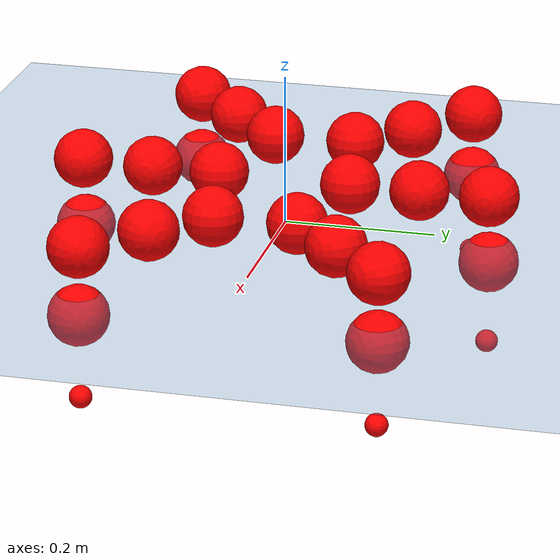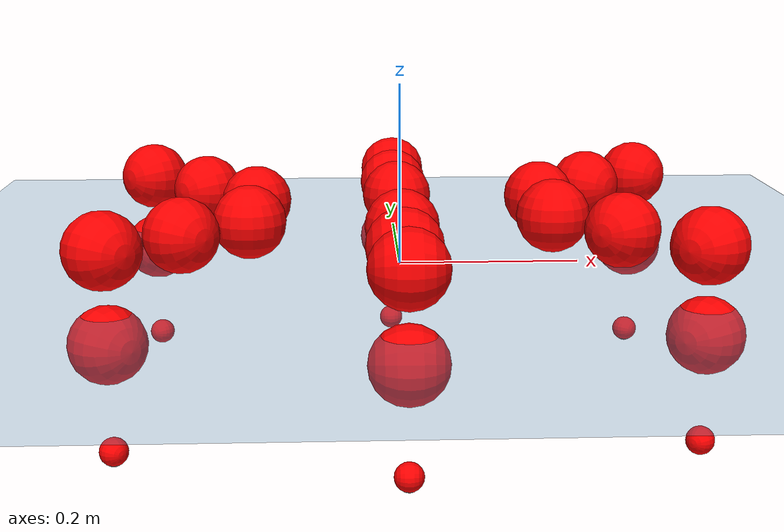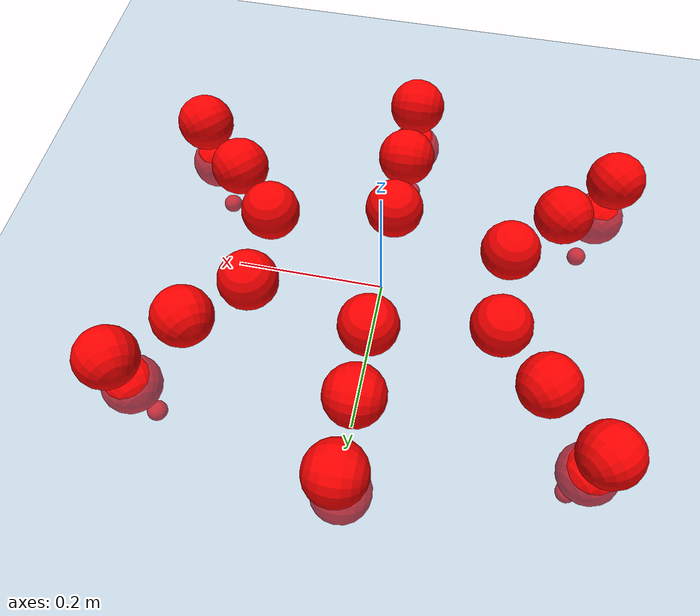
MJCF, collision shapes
<mujoco model="Golem">
  <compiler angle="radian" assetdir="assets" balanceinertia="true" inertiafromgeom="false"/>

  <option timestep="0.005" density="1.2" viscosity="2e-05"/>

  <size nkey="1"/>

  <visual>
    <quality shadowsize="8192"/>
    <map shadowclip="0.5"/>
  </visual>

  <default>
    <default class="/">
      <joint armature="0.01" damping="0.01" frictionloss="0.01"/>
      <geom contype="0" conaffinity="0" group="1" solref="-1000 -80"/>
      <site size="0.01 0.005 0.005" group="5"/>
      <general forcelimited="true" biastype="affine" gainprm="25" biasprm="0 -25 -0.5"/>
      <default class="visual">
        <geom type="mesh" group="2"/>
      </default>
      <default class="collision">
        <geom group="3"/>
      </default>
      <default class="foot">
        <geom size="0.01 0 0" condim="6" group="4" priority="1" solimp="0.015 1 0.01"/>
      </default>
      <default class="reward_collision_sphere">
        <geom group="5" rgba="1 0 0 1"/>
      </default>
    </default>
  </default>

  <asset>
    <texture type="skybox" colorspace="auto" name="//unnamed_texture_0" builtin="gradient" rgb1="0.95 0.95 0.95" rgb2="0.95 0.95 0.95" width="100" height="600"/>
    <texture type="2d" colorspace="auto" name="texplane" builtin="checker" rgb1="0.345 0.575 0.748" rgb2="0.345 0.575 0.748" markrgb="1 1 1" width="512" height="512"/>
    <material name="MatPlane" class="/" texture="texplane" texuniform="true" texrepeat="2 2" specular="0.9"/>
    <mesh name="body" class="/" file="body.stl" scale="0.001 0.001 0.001"/>
    <mesh name="coxa" class="/" file="coxa.stl" scale="0.001 0.001 0.001"/>
    <mesh name="femur" class="/" file="femur.stl" scale="0.001 0.001 0.001"/>
    <mesh name="tibia" class="/" file="tibia.stl" scale="0.001 0.001 0.001"/>
    <mesh name="tarsus" class="/" file="tarsus.stl" scale="0.001 0.001 0.001"/>
  </asset>

  <worldbody>
    <geom name="floor" class="/" size="100 100 0.125" type="plane" group="0" material="MatPlane"/>
    <light name="toplight_shadow" class="/" pos="0 0 5" dir="0.0990148 0.0990148 -0.990148" type="directional" ambient="0.04 0.04 0.04" diffuse="0.55 0.55 0.55" specular="0.12 0.12 0.12"/>
    <light name="toplight_fill" class="/" pos="0 0 5" dir="0.0990148 0.0990148 -0.990148" type="directional" castshadow="false" ambient="0.04 0.04 0.04" diffuse="0.3 0.3 0.3" specular="0.08 0.08 0.08"/>
    <body name="trunk" pos="-0.000831677 0.00110931 -0.0019431" quat="1 0.000124319 -0.000946734 -0.000215636">
      <inertial pos="0.00196238 0.00171165 -0.00574444" quat="0.999907 -0.00967005 0.00738959 0.00610286" mass="3.44814" diaginertia="0.012005 0.00596126 0.0109859"/>
      <joint name="//unnamed_joint_0" type="free"/>
      <geom name="//unnamed_geom_1" class="/" pos="0 0 0.0650378" quat="1 0 0 0" type="mesh" rgba="0.9 0.9 0.9 1" mesh="body"/>
      <site name="imu" class="/" pos="0.133024 0.00352923 0.101255" size="0.00986333"/>
      <camera name="track" class="/" pos="0 -1.80616 0" quat="0.707107 0.707107 0 0" mode="trackcom"/>
      <camera name="ego_camera" class="/" pos="0.135162 0 0.101621" quat="-0.5 -0.5 0.5 0.5"/>
      <body name="coxa_RR" pos="-0.183996 -0.0767808 0.0620189" quat="0.382737 1.00332e-07 4.70895e-05 -0.923857">
        <inertial pos="-0.000327405 -0.00251853 0.000505688" quat="0.999998 0.000401299 0.00180175 -0.000154051" mass="0.185496" diaginertia="0.0118154 0.00560587 0.0108393"/>
        <joint name="coxa_joint_RR" class="/" pos="0 0 0" axis="0.000401816 -0.00842982 -0.999964" range="-3.18618 3.14352" armature="0.0104733" damping="0" frictionloss="0.00981456"/>
        <geom name="//unnamed_geom_2" class="/" type="mesh" rgba="0.2 0.2 0.2 1" mesh="coxa"/>
        <geom name="//unnamed_geom_3" class="reward_collision_sphere" size="0.0394533" pos="-0.0311912 0 0"/>
        <body name="femur_RR" pos="0.0628673 0.0022785 0.00166417" quat="0.499016 -0.500497 0.500273 0.500212">
          <inertial pos="0.00198399 -0.000704397 -0.00256081" quat="0.999988 0.00429813 -0.00238839 -0.000103634" mass="0.186652" diaginertia="0.012007 0.0058723 0.0110843"/>
          <joint name="femur_joint_RR" class="/" pos="0 0 0" axis="-0.000759976 -0.0033328 -0.999994" range="-3.13971 3.18912" armature="0.00990898" damping="0" frictionloss="0.0112385"/>
          <geom name="//unnamed_geom_4" class="/" type="mesh" rgba="0.9 0.9 0.9 1" mesh="femur"/>
          <geom name="//unnamed_geom_5" class="reward_collision_sphere" size="0.0394533"/>
          <body name="tibia_RR" pos="-0.00167311 -0.0978034 0.00147308" quat="-7.25138e-06 1 0.00011512 4.24062e-05">
            <inertial pos="0.00066354 0.000395503 -0.00080356" quat="0.999997 0.0018557 -0.000829104 0.00108983" mass="0.191926" diaginertia="0.0124502 0.00611744 0.0112042"/>
            <joint name="tibia_joint_RR" class="/" pos="0 0 0" axis="0.00426833 -0.0116729 0.999923" range="-3.09367 3.0994" armature="0.0104263" damping="0.0205456" frictionloss="0.00853754"/>
            <geom name="//unnamed_geom_6" class="/" type="mesh" rgba="0.2 0.2 0.2 1" mesh="tibia"/>
            <geom name="//unnamed_geom_7" class="reward_collision_sphere" size="0.0394533"/>
            <body name="tarsus_RR" pos="0.0940857 0.000814583 -0.00282059" quat="0.999999 -0.000167232 0.00124885 0.000319069">
              <inertial pos="0.0608107 0.000825786 -0.00227698" quat="0.499985 0.501958 0.499597 0.498453" mass="0.190831" diaginertia="0.01168 0.00603135 0.0105053"/>
              <joint name="tarsus_joint_RR" class="/" pos="0 0 0" axis="0.00171224 0.00315091 0.999994" range="-3.18545 3.11892" armature="0.00864536" damping="0.00307515" frictionloss="0.0106456"/>
              <geom name="//unnamed_geom_8" class="/" type="mesh" rgba="0.9 0.9 0.9 1" mesh="tarsus"/>
              <geom name="foot_1" class="foot" size="0.0108824" pos="0.116447 0 0" quat="0 -0.707107 0 0.707107"/>
              <geom name="//unnamed_geom_10" class="reward_collision_sphere" size="0.0394533"/>
              <geom name="//unnamed_geom_11" class="reward_collision_sphere" size="0.014795" pos="0.111768 0 0"/>
              <site name="foot_1" class="foot" pos="0.116447 0 0" quat="0 -0.707107 0 0.707107" size="0.00986333"/>
            </body>
          </body>
        </body>
      </body>
      <body name="coxa_RM" pos="-0.000492791 -0.122043 0.063608" quat="0.706624 0.000365415 -5.26957e-05 -0.707589">
        <inertial pos="0.00225856 -0.000871298 -0.00088282" quat="0.999999 0.000875253 0.00111899 -0.000177893" mass="0.185946" diaginertia="0.0120268 0.00608239 0.0108837"/>
        <joint name="coxa_joint_RM" class="/" pos="0 0 0" axis="-0.00207986 0.00341063 -0.999992" range="-3.1505 3.14339" armature="0.0108836" damping="0.000152298" frictionloss="0.0111716"/>
        <geom name="//unnamed_geom_12" class="/" type="mesh" rgba="0.2 0.2 0.2 1" mesh="coxa"/>
        <geom name="//unnamed_geom_13" class="reward_collision_sphere" size="0.0394533" pos="-0.0311912 0 0"/>
        <body name="femur_RM" pos="0.0600204 -0.00106531 -0.000234535" quat="0.50017 -0.500021 0.499919 0.49989">
          <inertial pos="-0.000308246 -0.00272994 -0.000610632" quat="0.999918 0.000682645 0.00814798 -0.00983803" mass="0.19166" diaginertia="0.0120235 0.00601159 0.0108272"/>
          <joint name="femur_joint_RM" class="/" pos="0 0 0" axis="0.00771537 -0.00586668 -0.999953" stiffness="0.00845509" range="-3.14405 3.13418" armature="0.0108756" damping="0.0215087" frictionloss="0.00852439"/>
          <geom name="//unnamed_geom_14" class="/" type="mesh" rgba="0.9 0.9 0.9 1" mesh="femur"/>
          <geom name="//unnamed_geom_15" class="reward_collision_sphere" size="0.0394533"/>
          <body name="tibia_RM" pos="-0.00198879 -0.0959952 -5.78532e-05" quat="-0.000495922 0.999999 0.000862156 -0.000815821">
            <inertial pos="-0.00249772 -0.00124745 -0.000445272" quat="0.999917 -0.00588244 -0.00206284 -0.0112478" mass="0.188728" diaginertia="0.0117906 0.00579056 0.0105918"/>
            <joint name="tibia_joint_RM" class="/" pos="0 0 0" axis="-6.59022e-05 0.00287714 0.999996" range="-3.1589 3.18793" armature="0.00868536" damping="0.00286174" frictionloss="0.0100963"/>
            <geom name="//unnamed_geom_16" class="/" type="mesh" rgba="0.2 0.2 0.2 1" mesh="tibia"/>
            <geom name="//unnamed_geom_17" class="reward_collision_sphere" size="0.0394533"/>
            <body name="tarsus_RM" pos="0.0926045 -0.00143921 -0.000218569" quat="1 -0.000303749 0.00014339 -0.000309798">
              <inertial pos="0.0632814 0.000820345 0.00265826" quat="0.500226 0.495984 0.502051 0.501716" mass="0.188414" diaginertia="0.0121348 0.00589822 0.0106499"/>
              <joint name="tarsus_joint_RM" class="/" pos="0 0 0" axis="-0.00924898 0.00511205 0.999944" range="-3.17389 3.11301" armature="0.00997571" damping="0.00543254" frictionloss="0.00902026"/>
              <geom name="//unnamed_geom_18" class="/" type="mesh" rgba="0.9 0.9 0.9 1" mesh="tarsus"/>
              <geom name="foot_2" class="foot" size="0.0107911" pos="0.116447 0 0" quat="0 -0.707107 0 0.707107"/>
              <geom name="//unnamed_geom_20" class="reward_collision_sphere" size="0.0394533"/>
              <geom name="//unnamed_geom_21" class="reward_collision_sphere" size="0.014795" pos="0.111768 0 0"/>
              <site name="foot_2" class="foot" pos="0.116447 0 0" quat="0 -0.707107 0 0.707107" size="0.00986333"/>
            </body>
          </body>
        </body>
      </body>
      <body name="coxa_RF" pos="0.185396 -0.0770521 0.0657511" quat="0.923792 -0.00139047 -0.000515765 -0.382893">
        <inertial pos="-0.00159314 -0.000155459 0.00174151" quat="0.999999 -0.0012117 -0.000213582 -0.000317758" mass="0.183555" diaginertia="0.0114342 0.00586743 0.0105949"/>
        <joint name="coxa_joint_RF" class="/" pos="0 0 0" axis="0.0010997 -0.00420525 -0.999991" range="-3.14233 3.19313" armature="0.00926039" damping="0" frictionloss="0.010346"/>
        <geom name="//unnamed_geom_22" class="/" type="mesh" rgba="0.2 0.2 0.2 1" mesh="coxa"/>
        <geom name="//unnamed_geom_23" class="reward_collision_sphere" size="0.0394533" pos="-0.0311912 0 0"/>
        <body name="femur_RF" pos="0.0600843 -0.00287389 -0.00187348" quat="0.500051 -0.50016 0.49977 0.500019">
          <inertial pos="-0.00194595 0.000101812 -0.00088648" quat="0.999936 -0.00720351 0.00681265 0.00551873" mass="0.189721" diaginertia="0.0116403 0.00591407 0.0104336"/>
          <joint name="femur_joint_RF" class="/" pos="0 0 0" axis="0.000307549 -5.28004e-05 -1" stiffness="0.00733701" range="-3.13032 3.08301" armature="0.0102504" damping="0" frictionloss="0.00848874"/>
          <geom name="//unnamed_geom_24" class="/" type="mesh" rgba="0.9 0.9 0.9 1" mesh="femur"/>
          <geom name="//unnamed_geom_25" class="reward_collision_sphere" size="0.0394533"/>
          <body name="tibia_RF" pos="0.0010829 -0.100641 0.00246389" quat="-4.45028e-05 1 0.000234106 0.000242983">
            <inertial pos="0.000340171 -2.92641e-05 0.00087565" quat="0.99999 0.000652595 0.00325735 0.0030616" mass="0.185676" diaginertia="0.0115066 0.0058025 0.0107227"/>
            <joint name="tibia_joint_RF" class="/" pos="0 0 0" axis="-0.0105312 0.00300631 0.99994" range="-3.12045 3.19232" armature="0.00954077" damping="0.00269649" frictionloss="0.0111791"/>
            <geom name="//unnamed_geom_26" class="/" type="mesh" rgba="0.2 0.2 0.2 1" mesh="tibia"/>
            <geom name="//unnamed_geom_27" class="reward_collision_sphere" size="0.0394533"/>
            <body name="tarsus_RF" pos="0.0914723 0.000812598 0.000965047" quat="1 0.000458615 -0.000627759 -0.000412604">
              <inertial pos="0.0600211 0.00153602 0.00213455" quat="0.496809 0.500836 0.498815 0.503515" mass="0.198289" diaginertia="0.0121723 0.00615857 0.0112705"/>
              <joint name="tarsus_joint_RF" class="/" pos="0 0 0" axis="-0.000398364 -0.0131012 0.999914" stiffness="0.0273669" range="-3.10869 3.1415" armature="0.0105718" damping="0.0119514" frictionloss="0.0104395"/>
              <geom name="//unnamed_geom_28" class="/" type="mesh" rgba="0.9 0.9 0.9 1" mesh="tarsus"/>
              <geom name="foot_3" class="foot" size="0.0099212" pos="0.116447 0 0" quat="0 -0.707107 0 0.707107"/>
              <geom name="//unnamed_geom_30" class="reward_collision_sphere" size="0.0394533"/>
              <geom name="//unnamed_geom_31" class="reward_collision_sphere" size="0.014795" pos="0.111768 0 0"/>
              <site name="foot_3" class="foot" pos="0.116447 0 0" quat="0 -0.707107 0 0.707107" size="0.00986333"/>
            </body>
          </body>
        </body>
      </body>
      <body name="coxa_LR" pos="-0.183051 0.078755 0.062749" quat="0.38201 0.00028808 0.000249731 0.924158">
        <inertial pos="-0.00193563 -0.00176139 0.000829978" quat="0.99996 0.00215171 -0.00806061 -0.00306946" mass="0.189463" diaginertia="0.0116793 0.00571399 0.0107044"/>
        <joint name="coxa_joint_LR" class="/" pos="0 0 0" axis="-0.00640517 0.00114917 -0.999979" stiffness="0.0131495" range="-3.19225 3.19505" armature="0.011198" damping="0" frictionloss="0.00947136"/>
        <geom name="//unnamed_geom_32" class="/" type="mesh" rgba="0.2 0.2 0.2 1" mesh="coxa"/>
        <geom name="//unnamed_geom_33" class="reward_collision_sphere" size="0.0394533" pos="-0.0311912 0 0"/>
        <body name="femur_LR" pos="0.0604744 -0.00298269 0.00115371" quat="0.500341 -0.498877 0.500035 0.500745">
          <inertial pos="-4.41797e-05 0.00147931 0.000566213" quat="0.999999 0.000609326 0.00110615 -0.000618216" mass="0.193528" diaginertia="0.0121639 0.00615426 0.0109117"/>
          <joint name="femur_joint_LR" class="/" pos="0 0 0" axis="-0.00188293 -0.00308253 0.999993" range="-3.12904 3.1287" armature="0.00981159" damping="0.0230416" frictionloss="0.00988263"/>
          <geom name="//unnamed_geom_34" class="/" type="mesh" rgba="0.9 0.9 0.9 1" mesh="femur"/>
          <geom name="//unnamed_geom_35" class="reward_collision_sphere" size="0.0394533"/>
          <body name="tibia_LR" pos="-0.00354035 -0.100773 0.000822474" quat="0.000628287 0.999999 -0.00115269 0.000378519">
            <inertial pos="0.00273964 -0.00162578 -0.00213193" quat="0.99999 -0.00155072 0.00348074 -0.00233786" mass="0.196943" diaginertia="0.0121806 0.00593425 0.0110799"/>
            <joint name="tibia_joint_LR" class="/" pos="0 0 0" axis="0.00729778 0.0136898 -0.99988" range="-3.08613 3.14689" armature="0.0111146" damping="0" frictionloss="0.00972572"/>
            <geom name="//unnamed_geom_36" class="/" type="mesh" rgba="0.2 0.2 0.2 1" mesh="tibia"/>
            <geom name="//unnamed_geom_37" class="reward_collision_sphere" size="0.0394533"/>
            <body name="tarsus_LR" pos="0.0893315 -0.000784762 0.00128762" quat="1 4.09992e-05 0.000663653 0.000741691">
              <inertial pos="0.0590153 0.000468986 -0.000438316" quat="0.510645 0.494153 0.501343 0.493669" mass="0.188712" diaginertia="0.0125133 0.00577545 0.010707"/>
              <joint name="tarsus_joint_LR" class="/" pos="0 0 0" axis="-0.0011579 -0.0013943 -0.999998" range="-3.19601 3.08652" armature="0.00885433" damping="0.0060967" frictionloss="0.00859337"/>
              <geom name="//unnamed_geom_38" class="/" type="mesh" rgba="0.9 0.9 0.9 1" mesh="tarsus"/>
              <geom name="foot_4" class="foot" size="0.00942252" pos="0.116447 0 0" quat="0.707107 0 -0.707107 0"/>
              <geom name="//unnamed_geom_40" class="reward_collision_sphere" size="0.0394533"/>
              <geom name="//unnamed_geom_41" class="reward_collision_sphere" size="0.014795" pos="0.111768 0 0"/>
              <site name="foot_4" class="foot" pos="0.116447 0 0" quat="0.707107 0 -0.707107 0" size="0.00986333"/>
            </body>
          </body>
        </body>
      </body>
      <body name="coxa_LM" pos="0.000435198 0.117127 0.0623731" quat="0.707115 0.000191215 0.000119947 0.707098">
        <inertial pos="-0.00210291 -0.00202951 0.00294784" quat="0.999991 0.00148748 -0.00324408 0.00208056" mass="0.186767" diaginertia="0.0124005 0.00594556 0.0107968"/>
        <joint name="coxa_joint_LM" class="/" pos="0 0 0" axis="0.000728797 0.00573984 -0.999983" range="-3.1608 3.17422" armature="0.0109986" damping="0.00534782" frictionloss="0.011111"/>
        <geom name="//unnamed_geom_42" class="/" type="mesh" rgba="0.2 0.2 0.2 1" mesh="coxa"/>
        <geom name="//unnamed_geom_43" class="reward_collision_sphere" size="0.0394533" pos="-0.0311912 0 0"/>
        <body name="femur_LM" pos="0.0606786 0.00149527 -0.00133459" quat="0.500046 -0.499961 0.499995 0.499997">
          <inertial pos="0.00207986 -0.00100886 -0.00213404" quat="0.99996 0.0073993 0.0022921 0.00454608" mass="0.202884" diaginertia="0.0123476 0.00610792 0.0107429"/>
          <joint name="femur_joint_LM" class="/" pos="0 0 0" axis="8.60637e-05 0.000123997 1" stiffness="0.00257083" range="-3.09492 3.13165" armature="0.00950424" damping="0.0167636" frictionloss="0.00878812"/>
          <geom name="//unnamed_geom_44" class="/" type="mesh" rgba="0.9 0.9 0.9 1" mesh="femur"/>
          <geom name="//unnamed_geom_45" class="reward_collision_sphere" size="0.0394533"/>
          <body name="tibia_LM" pos="-0.000908828 -0.0921861 -0.00234797" quat="-0.000506978 1 -8.13927e-05 -0.000348288">
            <inertial pos="0.00253128 -0.00124781 -0.00100072" quat="0.999996 0.00144413 -0.00100726 0.00204569" mass="0.192063" diaginertia="0.0121809 0.00589761 0.0104527"/>
            <joint name="tibia_joint_LM" class="/" pos="0 0 0" axis="-0.0128051 0.0068533 -0.999895" stiffness="0.0048853" range="-3.13834 3.1409" armature="0.00986929" damping="0.00928645" frictionloss="0.00914684"/>
            <geom name="//unnamed_geom_46" class="/" type="mesh" rgba="0.2 0.2 0.2 1" mesh="tibia"/>
            <geom name="//unnamed_geom_47" class="reward_collision_sphere" size="0.0394533"/>
            <body name="tarsus_LM" pos="0.0914132 0.00108981 -0.00164278" quat="1 5.00709e-06 -0.000145015 0.000384431">
              <inertial pos="0.063096 -0.000379139 0.00274827" quat="0.498719 0.500522 0.501593 0.499161" mass="0.194093" diaginertia="0.0119961 0.00581106 0.0108535"/>
              <joint name="tarsus_joint_LM" class="/" pos="0 0 0" axis="0.00162428 -0.00423674 -0.99999" range="-3.14314 3.14707" armature="0.0100786" damping="0.0058523" frictionloss="0.0101553"/>
              <geom name="//unnamed_geom_48" class="/" type="mesh" rgba="0.9 0.9 0.9 1" mesh="tarsus"/>
              <geom name="foot_5" class="foot" size="0.0100833" pos="0.116447 0 0" quat="0.707107 0 -0.707107 0"/>
              <geom name="//unnamed_geom_50" class="reward_collision_sphere" size="0.0394533"/>
              <geom name="//unnamed_geom_51" class="reward_collision_sphere" size="0.014795" pos="0.111768 0 0"/>
              <site name="foot_5" class="foot" pos="0.116447 0 0" quat="0.707107 0 -0.707107 0" size="0.00986333"/>
            </body>
          </body>
        </body>
      </body>
      <body name="coxa_LF" pos="0.185061 0.076592 0.0658429" quat="0.924085 -0.000105936 0.000482004 0.382188">
        <inertial pos="-8.9877e-05 0.000640856 0.00103532" quat="0.999956 -0.0039538 0.00613736 0.00583883" mass="0.188181" diaginertia="0.0122185 0.00610232 0.0106431"/>
        <joint name="coxa_joint_LF" class="/" pos="0 0 0" axis="-0.00350368 -0.00707831 -0.999969" range="-3.15674 3.12758" armature="0.00908207" damping="0.00214522" frictionloss="0.00921896"/>
        <geom name="//unnamed_geom_52" class="/" type="mesh" rgba="0.2 0.2 0.2 1" mesh="coxa"/>
        <geom name="//unnamed_geom_53" class="reward_collision_sphere" size="0.0394533" pos="-0.0311912 0 0"/>
        <body name="femur_LF" pos="0.0608696 -6.88966e-05 0.000751502" quat="0.499937 -0.500051 0.500291 0.49972">
          <inertial pos="0.00101127 0.000859674 -0.0014154" quat="0.999997 -0.00236492 -0.000962727 0.000499773" mass="0.183089" diaginertia="0.0120635 0.00595222 0.0107106"/>
          <joint name="femur_joint_LF" class="/" pos="0 0 0" axis="0.000652252 -0.000156393 1" stiffness="0.00402836" range="-3.15905 3.1545" armature="0.0111303" damping="0.0184875" frictionloss="0.010776"/>
          <geom name="//unnamed_geom_54" class="/" type="mesh" rgba="0.9 0.9 0.9 1" mesh="femur"/>
          <geom name="//unnamed_geom_55" class="reward_collision_sphere" size="0.0394533"/>
          <body name="tibia_LF" pos="0.000563712 -0.0995888 -0.0016746" quat="0.000204767 0.999999 0.000876014 0.000885101">
            <inertial pos="-0.00263847 0.00111244 0.000369507" quat="1 0.000940802 -0.000109797 -5.93446e-05" mass="0.202193" diaginertia="0.0124671 0.00609805 0.0113904"/>
            <joint name="tibia_joint_LF" class="/" pos="0 0 0" axis="-0.00299306 -0.000870598 -0.999995" range="-3.12369 3.14349" armature="0.0110432" damping="0" frictionloss="0.00938974"/>
            <geom name="//unnamed_geom_56" class="/" type="mesh" rgba="0.2 0.2 0.2 1" mesh="tibia"/>
            <geom name="//unnamed_geom_57" class="reward_collision_sphere" size="0.0394533"/>
            <body name="tarsus_LF" pos="0.0905663 -0.00121322 -0.000639367" quat="1 -8.98876e-05 -0.000214208 0.000414831">
              <inertial pos="0.0638311 0.00297592 -0.000923045" quat="0.509316 0.499569 0.498408 0.492562" mass="0.190161" diaginertia="0.0127183 0.00597062 0.0113562"/>
              <joint name="tarsus_joint_LF" class="/" pos="0 0 0" axis="-0.0152827 0.00123275 -0.999882" range="-3.11056 3.12785" armature="0.0107353" damping="0.0132581" frictionloss="0.0102086"/>
              <geom name="//unnamed_geom_58" class="/" type="mesh" rgba="0.9 0.9 0.9 1" mesh="tarsus"/>
              <geom name="foot_6" class="foot" size="0.0108332" pos="0.116447 0 0" quat="0.707107 0 -0.707107 0"/>
              <geom name="//unnamed_geom_60" class="reward_collision_sphere" size="0.0394533"/>
              <geom name="//unnamed_geom_61" class="reward_collision_sphere" size="0.014795" pos="0.111768 0 0"/>
              <site name="foot_6" class="foot" pos="0.116447 0 0" quat="0.707107 0 -0.707107 0" size="0.00986333"/>
            </body>
          </body>
        </body>
      </body>
    </body>
  </worldbody>

  <contact>
    <pair class="/" geom1="floor" geom2="foot_1" name="//unnamed_contact_0"/>
    <pair class="/" geom1="floor" geom2="foot_2" name="//unnamed_contact_1"/>
    <pair class="/" geom1="floor" geom2="foot_3" name="//unnamed_contact_2"/>
    <pair class="/" geom1="floor" geom2="foot_4" name="//unnamed_contact_3"/>
    <pair class="/" geom1="floor" geom2="foot_5" name="//unnamed_contact_4"/>
    <pair class="/" geom1="floor" geom2="foot_6" name="//unnamed_contact_5"/>
  </contact>

  <actuator>
    <general name="coxa_joint_RR" class="/" joint="coxa_joint_RR" forcerange="-6.49727 6.49727" gainprm="24.6389" biasprm="0 -24.6389 -0.469639"/>
    <general name="femur_joint_RR" class="/" joint="femur_joint_RR" forcerange="-7.26132 7.26132" gainprm="24.6389" biasprm="0 -24.6389 -0.469639"/>
    <general name="tibia_joint_RR" class="/" joint="tibia_joint_RR" forcerange="-6.59008 6.59008" gainprm="24.6389" biasprm="0 -24.6389 -0.469639"/>
    <general name="tarsus_joint_RR" class="/" joint="tarsus_joint_RR" forcerange="-7.41128 7.41128" gainprm="24.6389" biasprm="0 -24.6389 -0.469639"/>
    <general name="coxa_joint_RM" class="/" joint="coxa_joint_RM" forcerange="-7.1736 7.1736" gainprm="24.6389" biasprm="0 -24.6389 -0.469639"/>
    <general name="femur_joint_RM" class="/" joint="femur_joint_RM" forcerange="-7.16529 7.16529" gainprm="24.6389" biasprm="0 -24.6389 -0.469639"/>
    <general name="tibia_joint_RM" class="/" joint="tibia_joint_RM" forcerange="-7.14882 7.14882" gainprm="24.6389" biasprm="0 -24.6389 -0.469639"/>
    <general name="tarsus_joint_RM" class="/" joint="tarsus_joint_RM" forcerange="-7.09965 7.09965" gainprm="24.6389" biasprm="0 -24.6389 -0.469639"/>
    <general name="coxa_joint_RF" class="/" joint="coxa_joint_RF" forcerange="-7.93413 7.93413" gainprm="24.6389" biasprm="0 -24.6389 -0.469639"/>
    <general name="femur_joint_RF" class="/" joint="femur_joint_RF" forcerange="-7.19032 7.19032" gainprm="24.6389" biasprm="0 -24.6389 -0.469639"/>
    <general name="tibia_joint_RF" class="/" joint="tibia_joint_RF" forcerange="-7.84683 7.84683" gainprm="24.6389" biasprm="0 -24.6389 -0.469639"/>
    <general name="tarsus_joint_RF" class="/" joint="tarsus_joint_RF" forcerange="-6.61451 6.61451" gainprm="24.6389" biasprm="0 -24.6389 -0.469639"/>
    <general name="coxa_joint_LR" class="/" joint="coxa_joint_LR" forcerange="-6.50481 6.50481" gainprm="24.6389" biasprm="0 -24.6389 -0.469639"/>
    <general name="femur_joint_LR" class="/" joint="femur_joint_LR" forcerange="-6.93528 6.93528" gainprm="24.6389" biasprm="0 -24.6389 -0.469639"/>
    <general name="tibia_joint_LR" class="/" joint="tibia_joint_LR" forcerange="-7.14546 7.14546" gainprm="24.6389" biasprm="0 -24.6389 -0.469639"/>
    <general name="tarsus_joint_LR" class="/" joint="tarsus_joint_LR" forcerange="-6.51078 6.51078" gainprm="24.6389" biasprm="0 -24.6389 -0.469639"/>
    <general name="coxa_joint_LM" class="/" joint="coxa_joint_LM" forcerange="-6.91453 6.91453" gainprm="24.6389" biasprm="0 -24.6389 -0.469639"/>
    <general name="femur_joint_LM" class="/" joint="femur_joint_LM" forcerange="-6.55245 6.55245" gainprm="24.6389" biasprm="0 -24.6389 -0.469639"/>
    <general name="tibia_joint_LM" class="/" joint="tibia_joint_LM" forcerange="-6.47359 6.47359" gainprm="24.6389" biasprm="0 -24.6389 -0.469639"/>
    <general name="tarsus_joint_LM" class="/" joint="tarsus_joint_LM" forcerange="-6.82076 6.82076" gainprm="24.6389" biasprm="0 -24.6389 -0.469639"/>
    <general name="coxa_joint_LF" class="/" joint="coxa_joint_LF" forcerange="-6.9612 6.9612" gainprm="24.6389" biasprm="0 -24.6389 -0.469639"/>
    <general name="femur_joint_LF" class="/" joint="femur_joint_LF" forcerange="-6.50552 6.50552" gainprm="24.6389" biasprm="0 -24.6389 -0.469639"/>
    <general name="tibia_joint_LF" class="/" joint="tibia_joint_LF" forcerange="-7.8993 7.8993" gainprm="24.6389" biasprm="0 -24.6389 -0.469639"/>
    <general name="tarsus_joint_LF" class="/" joint="tarsus_joint_LF" forcerange="-6.4945 6.4945" gainprm="24.6389" biasprm="0 -24.6389 -0.469639"/>
  </actuator>

  <sensor>
    <gyro site="imu" name="imu_angular_velocity"/>
    <velocimeter site="imu" name="imu_linear_velocity"/>
    <framelinvel objtype="site" objname="foot_1" name="foot_1_global_linear_velocity"/>
    <framelinvel objtype="site" objname="foot_2" name="foot_2_global_linear_velocity"/>
    <framelinvel objtype="site" objname="foot_3" name="foot_3_global_linear_velocity"/>
    <framelinvel objtype="site" objname="foot_4" name="foot_4_global_linear_velocity"/>
    <framelinvel objtype="site" objname="foot_5" name="foot_5_global_linear_velocity"/>
    <framelinvel objtype="site" objname="foot_6" name="foot_6_global_linear_velocity"/>
  </sensor>

  <keyframe>
    <key name="home" qpos="0 0 0.1457 1 0 0 0 0 0 0 0 0 0 0 0 0 0 0 0 0 0 0 0 0 0 0 0 0 0 0 0"/>
  </keyframe>
</mujoco>
